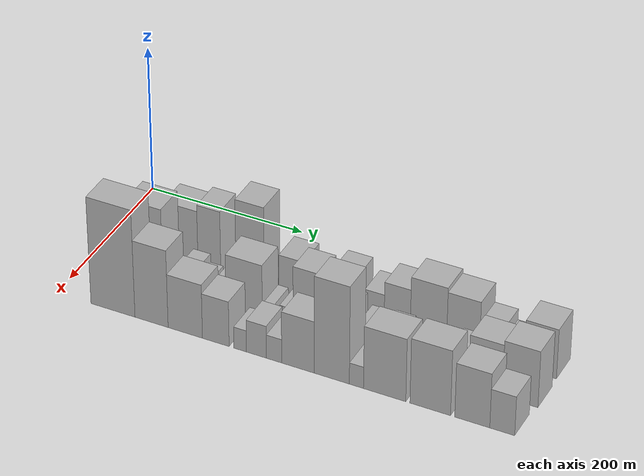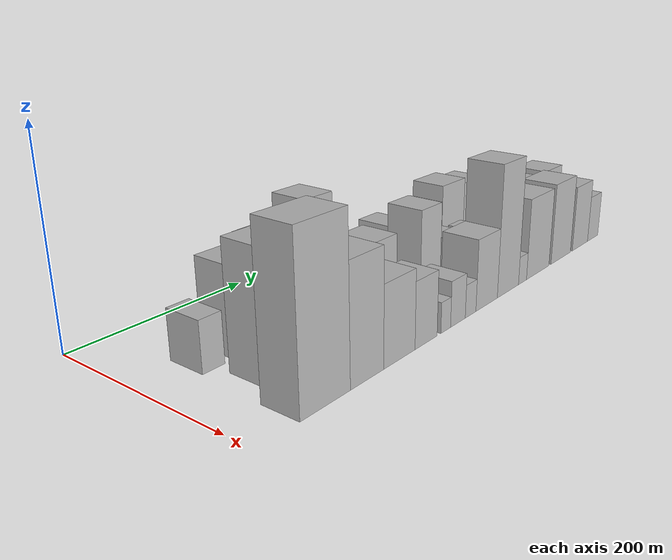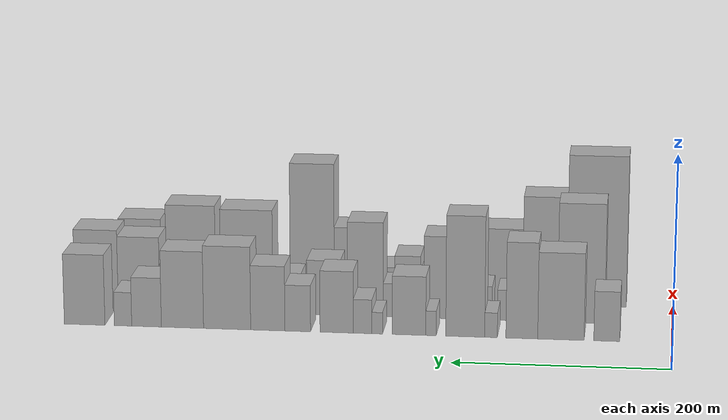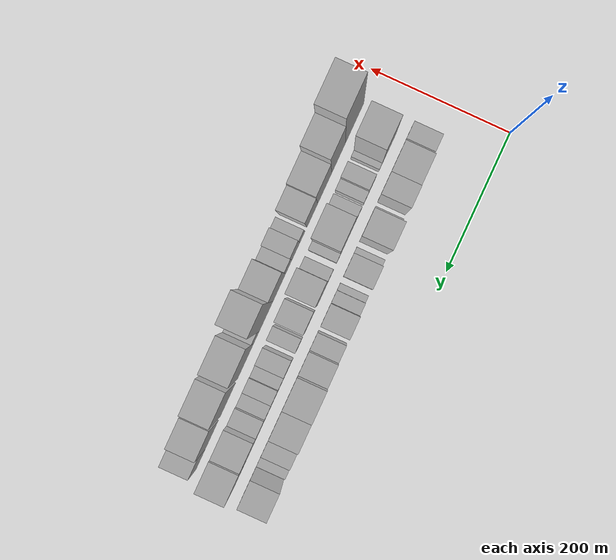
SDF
<sdf version="1.6">
 <world name="default">
  <model name="building_13">
   <static>1</static>
   <pose>100.0000 60.9110 0 0.000000 0.000000 0.000000</pose>
   <link name="link">
    <pose>0 0 24.00 0 0 0</pose>
    <collision name="collision"><geometry><box><size>40.0000 24.1148 48.0000</size></box></geometry></collision>
    <visual name="visual">
     <cast_shadows>0</cast_shadows>
     <geometry><box><size>40.0000 24.1148 48.0000</size></box></geometry>
     <material>
      <script>
       <uri>model://HANNAS_wall/materials/scripts</uri>
       <uri>model://HANNAS_wall/materials/textures</uri>
       <name>vrc/HANNAS_wall</name>
      </script>
     </material>
    </visual>
   </link>
  </model>
  <model name="building_14">
   <static>1</static>
   <pose>100.0000 103.5865 0 0.000000 0.000000 0.000000</pose>
   <link name="link">
    <pose>0 0 42.00 0 0 0</pose>
    <collision name="collision"><geometry><box><size>40.0000 43.2362 84.0000</size></box></geometry></collision>
    <visual name="visual">
     <cast_shadows>0</cast_shadows>
     <geometry><box><size>40.0000 43.2362 84.0000</size></box></geometry>
     <material>
      <script>
       <uri>model://HANNAS_wall/materials/scripts</uri>
       <uri>model://HANNAS_wall/materials/textures</uri>
       <name>vrc/HANNAS_wall</name>
      </script>
     </material>
    </visual>
   </link>
  </model>
  <model name="building_15">
   <static>1</static>
   <pose>100.0000 140.0767 0 0.000000 0.000000 0.000000</pose>
   <link name="link">
    <pose>0 0 46.50 0 0 0</pose>
    <collision name="collision"><geometry><box><size>40.0000 29.7441 93.0000</size></box></geometry></collision>
    <visual name="visual">
     <cast_shadows>0</cast_shadows>
     <geometry><box><size>40.0000 29.7441 93.0000</size></box></geometry>
     <material>
      <script>
       <uri>model://HANNAS_wall/materials/scripts</uri>
       <uri>model://HANNAS_wall/materials/textures</uri>
       <name>vrc/HANNAS_wall</name>
      </script>
     </material>
    </visual>
   </link>
  </model>
  <model name="building_16">
   <static>1</static>
   <pose>100.0000 168.8575 0 0.000000 0.000000 0.000000</pose>
   <link name="link">
    <pose>0 0 12.00 0 0 0</pose>
    <collision name="collision"><geometry><box><size>40.0000 11.8175 24.0000</size></box></geometry></collision>
    <visual name="visual">
     <cast_shadows>0</cast_shadows>
     <geometry><box><size>40.0000 11.8175 24.0000</size></box></geometry>
     <material>
      <script>
       <uri>model://HANNAS_wall/materials/scripts</uri>
       <uri>model://HANNAS_wall/materials/textures</uri>
       <name>vrc/HANNAS_wall</name>
      </script>
     </material>
    </visual>
   </link>
  </model>
  <model name="building_17">
   <static>1</static>
   <pose>100.0000 193.0246 0 0.000000 0.000000 0.000000</pose>
   <link name="link">
    <pose>0 0 58.50 0 0 0</pose>
    <collision name="collision"><geometry><box><size>40.0000 36.5165 117.0000</size></box></geometry></collision>
    <visual name="visual">
     <cast_shadows>0</cast_shadows>
     <geometry><box><size>40.0000 36.5165 117.0000</size></box></geometry>
     <material>
      <script>
       <uri>model://HANNAS_wall/materials/scripts</uri>
       <uri>model://HANNAS_wall/materials/textures</uri>
       <name>vrc/HANNAS_wall</name>
      </script>
     </material>
    </visual>
   </link>
  </model>
  <model name="building_18">
   <static>1</static>
   <pose>100.0000 225.1715 0 0.000000 0.000000 0.000000</pose>
   <link name="link">
    <pose>0 0 12.00 0 0 0</pose>
    <collision name="collision"><geometry><box><size>40.0000 9.7774 24.0000</size></box></geometry></collision>
    <visual name="visual">
     <cast_shadows>0</cast_shadows>
     <geometry><box><size>40.0000 9.7774 24.0000</size></box></geometry>
     <material>
      <script>
       <uri>model://HANNAS_wall/materials/scripts</uri>
       <uri>model://HANNAS_wall/materials/textures</uri>
       <name>vrc/HANNAS_wall</name>
      </script>
     </material>
    </visual>
   </link>
  </model>
  <model name="building_19">
   <static>1</static>
   <pose>100.0000 245.9627 0 0.000000 0.000000 0.000000</pose>
   <link name="link">
    <pose>0 0 28.50 0 0 0</pose>
    <collision name="collision"><geometry><box><size>40.0000 31.8050 57.0000</size></box></geometry></collision>
    <visual name="visual">
     <cast_shadows>0</cast_shadows>
     <geometry><box><size>40.0000 31.8050 57.0000</size></box></geometry>
     <material>
      <script>
       <uri>model://HANNAS_wall/materials/scripts</uri>
       <uri>model://HANNAS_wall/materials/textures</uri>
       <name>vrc/HANNAS_wall</name>
      </script>
     </material>
    </visual>
   </link>
  </model>
  <model name="building_20">
   <static>1</static>
   <pose>100.0000 275.8866 0 0.000000 0.000000 0.000000</pose>
   <link name="link">
    <pose>0 0 10.50 0 0 0</pose>
    <collision name="collision"><geometry><box><size>40.0000 10.0427 21.0000</size></box></geometry></collision>
    <visual name="visual">
     <cast_shadows>0</cast_shadows>
     <geometry><box><size>40.0000 10.0427 21.0000</size></box></geometry>
     <material>
      <script>
       <uri>model://HANNAS_wall/materials/scripts</uri>
       <uri>model://HANNAS_wall/materials/textures</uri>
       <name>vrc/HANNAS_wall</name>
      </script>
     </material>
    </visual>
   </link>
  </model>
  <model name="building_21">
   <static>1</static>
   <pose>100.0000 289.7496 0 0.000000 0.000000 0.000000</pose>
   <link name="link">
    <pose>0 0 16.50 0 0 0</pose>
    <collision name="collision"><geometry><box><size>40.0000 17.6834 33.0000</size></box></geometry></collision>
    <visual name="visual">
     <cast_shadows>0</cast_shadows>
     <geometry><box><size>40.0000 17.6834 33.0000</size></box></geometry>
     <material>
      <script>
       <uri>model://HANNAS_wall/materials/scripts</uri>
       <uri>model://HANNAS_wall/materials/textures</uri>
       <name>vrc/HANNAS_wall</name>
      </script>
     </material>
    </visual>
   </link>
  </model>
  <model name="building_22">
   <static>1</static>
   <pose>100.0000 314.2747 0 0.000000 0.000000 0.000000</pose>
   <link name="link">
    <pose>0 0 30.00 0 0 0</pose>
    <collision name="collision"><geometry><box><size>40.0000 31.3669 60.0000</size></box></geometry></collision>
    <visual name="visual">
     <cast_shadows>0</cast_shadows>
     <geometry><box><size>40.0000 31.3669 60.0000</size></box></geometry>
     <material>
      <script>
       <uri>model://HANNAS_wall/materials/scripts</uri>
       <uri>model://HANNAS_wall/materials/textures</uri>
       <name>vrc/HANNAS_wall</name>
      </script>
     </material>
    </visual>
   </link>
  </model>
  <model name="building_23">
   <static>1</static>
   <pose>100.0000 351.1268 0 0.000000 0.000000 0.000000</pose>
   <link name="link">
    <pose>0 0 22.50 0 0 0</pose>
    <collision name="collision"><geometry><box><size>40.0000 24.3372 45.0000</size></box></geometry></collision>
    <visual name="visual">
     <cast_shadows>0</cast_shadows>
     <geometry><box><size>40.0000 24.3372 45.0000</size></box></geometry>
     <material>
      <script>
       <uri>model://HANNAS_wall/materials/scripts</uri>
       <uri>model://HANNAS_wall/materials/textures</uri>
       <name>vrc/HANNAS_wall</name>
      </script>
     </material>
    </visual>
   </link>
  </model>
  <model name="building_24">
   <static>1</static>
   <pose>100.0000 379.5723 0 0.000000 0.000000 0.000000</pose>
   <link name="link">
    <pose>0 0 31.50 0 0 0</pose>
    <collision name="collision"><geometry><box><size>40.0000 32.5538 63.0000</size></box></geometry></collision>
    <visual name="visual">
     <cast_shadows>0</cast_shadows>
     <geometry><box><size>40.0000 32.5538 63.0000</size></box></geometry>
     <material>
      <script>
       <uri>model://HANNAS_wall/materials/scripts</uri>
       <uri>model://HANNAS_wall/materials/textures</uri>
       <name>vrc/HANNAS_wall</name>
      </script>
     </material>
    </visual>
   </link>
  </model>
  <model name="building_25">
   <static>1</static>
   <pose>100.0000 418.3268 0 0.000000 0.000000 0.000000</pose>
   <link name="link">
    <pose>0 0 40.50 0 0 0</pose>
    <collision name="collision"><geometry><box><size>40.0000 44.9550 81.0000</size></box></geometry></collision>
    <visual name="visual">
     <cast_shadows>0</cast_shadows>
     <geometry><box><size>40.0000 44.9550 81.0000</size></box></geometry>
     <material>
      <script>
       <uri>model://HANNAS_wall/materials/scripts</uri>
       <uri>model://HANNAS_wall/materials/textures</uri>
       <name>vrc/HANNAS_wall</name>
      </script>
     </material>
    </visual>
   </link>
  </model>
  <model name="building_26">
   <static>1</static>
   <pose>100.0000 460.9864 0 0.000000 0.000000 0.000000</pose>
   <link name="link">
    <pose>0 0 37.50 0 0 0</pose>
    <collision name="collision"><geometry><box><size>40.0000 40.3642 75.0000</size></box></geometry></collision>
    <visual name="visual">
     <cast_shadows>0</cast_shadows>
     <geometry><box><size>40.0000 40.3642 75.0000</size></box></geometry>
     <material>
      <script>
       <uri>model://HANNAS_wall/materials/scripts</uri>
       <uri>model://HANNAS_wall/materials/textures</uri>
       <name>vrc/HANNAS_wall</name>
      </script>
     </material>
    </visual>
   </link>
  </model>
  <model name="building_27">
   <static>1</static>
   <pose>100.0000 495.3992 0 0.000000 0.000000 0.000000</pose>
   <link name="link">
    <pose>0 0 24.00 0 0 0</pose>
    <collision name="collision"><geometry><box><size>40.0000 28.4614 48.0000</size></box></geometry></collision>
    <visual name="visual">
     <cast_shadows>0</cast_shadows>
     <geometry><box><size>40.0000 28.4614 48.0000</size></box></geometry>
     <material>
      <script>
       <uri>model://HANNAS_wall/materials/scripts</uri>
       <uri>model://HANNAS_wall/materials/textures</uri>
       <name>vrc/HANNAS_wall</name>
      </script>
     </material>
    </visual>
   </link>
  </model>
  <model name="building_28">
   <static>1</static>
   <pose>100.0000 517.9924 0 0.000000 0.000000 0.000000</pose>
   <link name="link">
    <pose>0 0 16.50 0 0 0</pose>
    <collision name="collision"><geometry><box><size>40.0000 16.7249 33.0000</size></box></geometry></collision>
    <visual name="visual">
     <cast_shadows>0</cast_shadows>
     <geometry><box><size>40.0000 16.7249 33.0000</size></box></geometry>
     <material>
      <script>
       <uri>model://HANNAS_wall/materials/scripts</uri>
       <uri>model://HANNAS_wall/materials/textures</uri>
       <name>vrc/HANNAS_wall</name>
      </script>
     </material>
    </visual>
   </link>
  </model>
  <model name="building_29">
   <static>1</static>
   <pose>100.0000 554.8969 0 0.000000 0.000000 0.000000</pose>
   <link name="link">
    <pose>0 0 34.50 0 0 0</pose>
    <collision name="collision"><geometry><box><size>40.0000 39.0842 69.0000</size></box></geometry></collision>
    <visual name="visual">
     <cast_shadows>0</cast_shadows>
     <geometry><box><size>40.0000 39.0842 69.0000</size></box></geometry>
     <material>
      <script>
       <uri>model://HANNAS_wall/materials/scripts</uri>
       <uri>model://HANNAS_wall/materials/textures</uri>
       <name>vrc/HANNAS_wall</name>
      </script>
     </material>
    </visual>
   </link>
  </model>
  <model name="building_50">
   <static>1</static>
   <pose>155.0000 86.7038 0 0.000000 0.000000 0.000000</pose>
   <link name="link">
    <pose>0 0 58.50 0 0 0</pose>
    <collision name="collision"><geometry><box><size>40.0000 44.8231 117.0000</size></box></geometry></collision>
    <visual name="visual">
     <cast_shadows>0</cast_shadows>
     <geometry><box><size>40.0000 44.8231 117.0000</size></box></geometry>
     <material>
      <script>
       <uri>model://HANNAS_wall/materials/scripts</uri>
       <uri>model://HANNAS_wall/materials/textures</uri>
       <name>vrc/HANNAS_wall</name>
      </script>
     </material>
    </visual>
   </link>
  </model>
  <model name="building_51">
   <static>1</static>
   <pose>155.0000 113.6470 0 0.000000 0.000000 0.000000</pose>
   <link name="link">
    <pose>0 0 10.50 0 0 0</pose>
    <collision name="collision"><geometry><box><size>40.0000 9.0633 21.0000</size></box></geometry></collision>
    <visual name="visual">
     <cast_shadows>0</cast_shadows>
     <geometry><box><size>40.0000 9.0633 21.0000</size></box></geometry>
     <material>
      <script>
       <uri>model://HANNAS_wall/materials/scripts</uri>
       <uri>model://HANNAS_wall/materials/textures</uri>
       <name>vrc/HANNAS_wall</name>
      </script>
     </material>
    </visual>
   </link>
  </model>
  <model name="building_52">
   <static>1</static>
   <pose>155.0000 139.1950 0 0.000000 0.000000 0.000000</pose>
   <link name="link">
    <pose>0 0 21.00 0 0 0</pose>
    <collision name="collision"><geometry><box><size>40.0000 22.0328 42.0000</size></box></geometry></collision>
    <visual name="visual">
     <cast_shadows>0</cast_shadows>
     <geometry><box><size>40.0000 22.0328 42.0000</size></box></geometry>
     <material>
      <script>
       <uri>model://HANNAS_wall/materials/scripts</uri>
       <uri>model://HANNAS_wall/materials/textures</uri>
       <name>vrc/HANNAS_wall</name>
      </script>
     </material>
    </visual>
   </link>
  </model>
  <model name="building_53">
   <static>1</static>
   <pose>155.0000 158.3336 0 0.000000 0.000000 0.000000</pose>
   <link name="link">
    <pose>0 0 15.00 0 0 0</pose>
    <collision name="collision"><geometry><box><size>40.0000 16.2444 30.0000</size></box></geometry></collision>
    <visual name="visual">
     <cast_shadows>0</cast_shadows>
     <geometry><box><size>40.0000 16.2444 30.0000</size></box></geometry>
     <material>
      <script>
       <uri>model://HANNAS_wall/materials/scripts</uri>
       <uri>model://HANNAS_wall/materials/textures</uri>
       <name>vrc/HANNAS_wall</name>
      </script>
     </material>
    </visual>
   </link>
  </model>
  <model name="building_54">
   <static>1</static>
   <pose>155.0000 180.9359 0 0.000000 0.000000 0.000000</pose>
   <link name="link">
    <pose>0 0 16.50 0 0 0</pose>
    <collision name="collision"><geometry><box><size>40.0000 18.9603 33.0000</size></box></geometry></collision>
    <visual name="visual">
     <cast_shadows>0</cast_shadows>
     <geometry><box><size>40.0000 18.9603 33.0000</size></box></geometry>
     <material>
      <script>
       <uri>model://HANNAS_wall/materials/scripts</uri>
       <uri>model://HANNAS_wall/materials/textures</uri>
       <name>vrc/HANNAS_wall</name>
      </script>
     </material>
    </visual>
   </link>
  </model>
  <model name="building_55">
   <static>1</static>
   <pose>155.0000 213.6391 0 0.000000 0.000000 0.000000</pose>
   <link name="link">
    <pose>0 0 40.50 0 0 0</pose>
    <collision name="collision"><geometry><box><size>40.0000 46.4460 81.0000</size></box></geometry></collision>
    <visual name="visual">
     <cast_shadows>0</cast_shadows>
     <geometry><box><size>40.0000 46.4460 81.0000</size></box></geometry>
     <material>
      <script>
       <uri>model://HANNAS_wall/materials/scripts</uri>
       <uri>model://HANNAS_wall/materials/textures</uri>
       <name>vrc/HANNAS_wall</name>
      </script>
     </material>
    </visual>
   </link>
  </model>
  <model name="building_56">
   <static>1</static>
   <pose>155.0000 243.3814 0 0.000000 0.000000 0.000000</pose>
   <link name="link">
    <pose>0 0 13.50 0 0 0</pose>
    <collision name="collision"><geometry><box><size>40.0000 13.0386 27.0000</size></box></geometry></collision>
    <visual name="visual">
     <cast_shadows>0</cast_shadows>
     <geometry><box><size>40.0000 13.0386 27.0000</size></box></geometry>
     <material>
      <script>
       <uri>model://HANNAS_wall/materials/scripts</uri>
       <uri>model://HANNAS_wall/materials/textures</uri>
       <name>vrc/HANNAS_wall</name>
      </script>
     </material>
    </visual>
   </link>
  </model>
  <model name="building_57">
   <static>1</static>
   <pose>155.0000 267.3557 0 0.000000 0.000000 0.000000</pose>
   <link name="link">
    <pose>0 0 16.50 0 0 0</pose>
    <collision name="collision"><geometry><box><size>40.0000 16.9100 33.0000</size></box></geometry></collision>
    <visual name="visual">
     <cast_shadows>0</cast_shadows>
     <geometry><box><size>40.0000 16.9100 33.0000</size></box></geometry>
     <material>
      <script>
       <uri>model://HANNAS_wall/materials/scripts</uri>
       <uri>model://HANNAS_wall/materials/textures</uri>
       <name>vrc/HANNAS_wall</name>
      </script>
     </material>
    </visual>
   </link>
  </model>
  <model name="building_58">
   <static>1</static>
   <pose>155.0000 293.0008 0 0.000000 0.000000 0.000000</pose>
   <link name="link">
    <pose>0 0 46.50 0 0 0</pose>
    <collision name="collision"><geometry><box><size>40.0000 34.3802 93.0000</size></box></geometry></collision>
    <visual name="visual">
     <cast_shadows>0</cast_shadows>
     <geometry><box><size>40.0000 34.3802 93.0000</size></box></geometry>
     <material>
      <script>
       <uri>model://HANNAS_wall/materials/scripts</uri>
       <uri>model://HANNAS_wall/materials/textures</uri>
       <name>vrc/HANNAS_wall</name>
      </script>
     </material>
    </visual>
   </link>
  </model>
  <model name="building_59">
   <static>1</static>
   <pose>155.0000 333.3561 0 0.000000 0.000000 0.000000</pose>
   <link name="link">
    <pose>0 0 27.00 0 0 0</pose>
    <collision name="collision"><geometry><box><size>40.0000 32.3304 54.0000</size></box></geometry></collision>
    <visual name="visual">
     <cast_shadows>0</cast_shadows>
     <geometry><box><size>40.0000 32.3304 54.0000</size></box></geometry>
     <material>
      <script>
       <uri>model://HANNAS_wall/materials/scripts</uri>
       <uri>model://HANNAS_wall/materials/textures</uri>
       <name>vrc/HANNAS_wall</name>
      </script>
     </material>
    </visual>
   </link>
  </model>
  <model name="building_60">
   <static>1</static>
   <pose>155.0000 365.4560 0 0.000000 0.000000 0.000000</pose>
   <link name="link">
    <pose>0 0 19.50 0 0 0</pose>
    <collision name="collision"><geometry><box><size>40.0000 19.8695 39.0000</size></box></geometry></collision>
    <visual name="visual">
     <cast_shadows>0</cast_shadows>
     <geometry><box><size>40.0000 19.8695 39.0000</size></box></geometry>
     <material>
      <script>
       <uri>model://HANNAS_wall/materials/scripts</uri>
       <uri>model://HANNAS_wall/materials/textures</uri>
       <name>vrc/HANNAS_wall</name>
      </script>
     </material>
    </visual>
   </link>
  </model>
  <model name="building_61">
   <static>1</static>
   <pose>155.0000 397.5208 0 0.000000 0.000000 0.000000</pose>
   <link name="link">
    <pose>0 0 21.00 0 0 0</pose>
    <collision name="collision"><geometry><box><size>40.0000 24.2600 42.0000</size></box></geometry></collision>
    <visual name="visual">
     <cast_shadows>0</cast_shadows>
     <geometry><box><size>40.0000 24.2600 42.0000</size></box></geometry>
     <material>
      <script>
       <uri>model://HANNAS_wall/materials/scripts</uri>
       <uri>model://HANNAS_wall/materials/textures</uri>
       <name>vrc/HANNAS_wall</name>
      </script>
     </material>
    </visual>
   </link>
  </model>
  <model name="building_62">
   <static>1</static>
   <pose>155.0000 418.5373 0 0.000000 0.000000 0.000000</pose>
   <link name="link">
    <pose>0 0 16.50 0 0 0</pose>
    <collision name="collision"><geometry><box><size>40.0000 17.7729 33.0000</size></box></geometry></collision>
    <visual name="visual">
     <cast_shadows>0</cast_shadows>
     <geometry><box><size>40.0000 17.7729 33.0000</size></box></geometry>
     <material>
      <script>
       <uri>model://HANNAS_wall/materials/scripts</uri>
       <uri>model://HANNAS_wall/materials/textures</uri>
       <name>vrc/HANNAS_wall</name>
      </script>
     </material>
    </visual>
   </link>
  </model>
  <model name="building_63">
   <static>1</static>
   <pose>155.0000 437.8290 0 0.000000 0.000000 0.000000</pose>
   <link name="link">
    <pose>0 0 19.50 0 0 0</pose>
    <collision name="collision"><geometry><box><size>40.0000 20.8105 39.0000</size></box></geometry></collision>
    <visual name="visual">
     <cast_shadows>0</cast_shadows>
     <geometry><box><size>40.0000 20.8105 39.0000</size></box></geometry>
     <material>
      <script>
       <uri>model://HANNAS_wall/materials/scripts</uri>
       <uri>model://HANNAS_wall/materials/textures</uri>
       <name>vrc/HANNAS_wall</name>
      </script>
     </material>
    </visual>
   </link>
  </model>
  <model name="building_64">
   <static>1</static>
   <pose>155.0000 458.1933 0 0.000000 0.000000 0.000000</pose>
   <link name="link">
    <pose>0 0 18.00 0 0 0</pose>
    <collision name="collision"><geometry><box><size>40.0000 19.9182 36.0000</size></box></geometry></collision>
    <visual name="visual">
     <cast_shadows>0</cast_shadows>
     <geometry><box><size>40.0000 19.9182 36.0000</size></box></geometry>
     <material>
      <script>
       <uri>model://HANNAS_wall/materials/scripts</uri>
       <uri>model://HANNAS_wall/materials/textures</uri>
       <name>vrc/HANNAS_wall</name>
      </script>
     </material>
    </visual>
   </link>
  </model>
  <model name="building_65">
   <static>1</static>
   <pose>155.0000 480.2966 0 0.000000 0.000000 0.000000</pose>
   <link name="link">
    <pose>0 0 22.50 0 0 0</pose>
    <collision name="collision"><geometry><box><size>40.0000 24.2884 45.0000</size></box></geometry></collision>
    <visual name="visual">
     <cast_shadows>0</cast_shadows>
     <geometry><box><size>40.0000 24.2884 45.0000</size></box></geometry>
     <material>
      <script>
       <uri>model://HANNAS_wall/materials/scripts</uri>
       <uri>model://HANNAS_wall/materials/textures</uri>
       <name>vrc/HANNAS_wall</name>
      </script>
     </material>
    </visual>
   </link>
  </model>
  <model name="building_66">
   <static>1</static>
   <pose>155.0000 512.7795 0 0.000000 0.000000 0.000000</pose>
   <link name="link">
    <pose>0 0 36.00 0 0 0</pose>
    <collision name="collision"><geometry><box><size>40.0000 40.6774 72.0000</size></box></geometry></collision>
    <visual name="visual">
     <cast_shadows>0</cast_shadows>
     <geometry><box><size>40.0000 40.6774 72.0000</size></box></geometry>
     <material>
      <script>
       <uri>model://HANNAS_wall/materials/scripts</uri>
       <uri>model://HANNAS_wall/materials/textures</uri>
       <name>vrc/HANNAS_wall</name>
      </script>
     </material>
    </visual>
   </link>
  </model>
  <model name="building_67">
   <static>1</static>
   <pose>155.0000 554.3783 0 0.000000 0.000000 0.000000</pose>
   <link name="link">
    <pose>0 0 39.00 0 0 0</pose>
    <collision name="collision"><geometry><box><size>40.0000 42.5201 78.0000</size></box></geometry></collision>
    <visual name="visual">
     <cast_shadows>0</cast_shadows>
     <geometry><box><size>40.0000 42.5201 78.0000</size></box></geometry>
     <material>
      <script>
       <uri>model://HANNAS_wall/materials/scripts</uri>
       <uri>model://HANNAS_wall/materials/textures</uri>
       <name>vrc/HANNAS_wall</name>
      </script>
     </material>
    </visual>
   </link>
  </model>
  <model name="building_85">
   <static>1</static>
   <pose>210.0000 73.7719 0 0.000000 0.000000 0.000000</pose>
   <link name="link">
    <pose>0 0 75.00 0 0 0</pose>
    <collision name="collision"><geometry><box><size>40.0000 57.3532 150.0000</size></box></geometry></collision>
    <visual name="visual">
     <cast_shadows>0</cast_shadows>
     <geometry><box><size>40.0000 57.3532 150.0000</size></box></geometry>
     <material>
      <script>
       <uri>model://HANNAS_wall/materials/scripts</uri>
       <uri>model://HANNAS_wall/materials/textures</uri>
       <name>vrc/HANNAS_wall</name>
      </script>
     </material>
    </visual>
   </link>
  </model>
  <model name="building_86">
   <static>1</static>
   <pose>210.0000 123.8322 0 0.000000 0.000000 0.000000</pose>
   <link name="link">
    <pose>0 0 54.00 0 0 0</pose>
    <collision name="collision"><geometry><box><size>40.0000 42.7673 108.0000</size></box></geometry></collision>
    <visual name="visual">
     <cast_shadows>0</cast_shadows>
     <geometry><box><size>40.0000 42.7673 108.0000</size></box></geometry>
     <material>
      <script>
       <uri>model://HANNAS_wall/materials/scripts</uri>
       <uri>model://HANNAS_wall/materials/textures</uri>
       <name>vrc/HANNAS_wall</name>
      </script>
     </material>
    </visual>
   </link>
  </model>
  <model name="building_87">
   <static>1</static>
   <pose>210.0000 167.1877 0 0.000000 0.000000 0.000000</pose>
   <link name="link">
    <pose>0 0 37.50 0 0 0</pose>
    <collision name="collision"><geometry><box><size>40.0000 43.9439 75.0000</size></box></geometry></collision>
    <visual name="visual">
     <cast_shadows>0</cast_shadows>
     <geometry><box><size>40.0000 43.9439 75.0000</size></box></geometry>
     <material>
      <script>
       <uri>model://HANNAS_wall/materials/scripts</uri>
       <uri>model://HANNAS_wall/materials/textures</uri>
       <name>vrc/HANNAS_wall</name>
      </script>
     </material>
    </visual>
   </link>
  </model>
  <model name="building_88">
   <static>1</static>
   <pose>210.0000 206.1076 0 0.000000 0.000000 0.000000</pose>
   <link name="link">
    <pose>0 0 31.50 0 0 0</pose>
    <collision name="collision"><geometry><box><size>40.0000 33.8959 63.0000</size></box></geometry></collision>
    <visual name="visual">
     <cast_shadows>0</cast_shadows>
     <geometry><box><size>40.0000 33.8959 63.0000</size></box></geometry>
     <material>
      <script>
       <uri>model://HANNAS_wall/materials/scripts</uri>
       <uri>model://HANNAS_wall/materials/textures</uri>
       <name>vrc/HANNAS_wall</name>
      </script>
     </material>
    </visual>
   </link>
  </model>
  <model name="building_89">
   <static>1</static>
   <pose>210.0000 236.9718 0 0.000000 0.000000 0.000000</pose>
   <link name="link">
    <pose>0 0 15.00 0 0 0</pose>
    <collision name="collision"><geometry><box><size>40.0000 15.8325 30.0000</size></box></geometry></collision>
    <visual name="visual">
     <cast_shadows>0</cast_shadows>
     <geometry><box><size>40.0000 15.8325 30.0000</size></box></geometry>
     <material>
      <script>
       <uri>model://HANNAS_wall/materials/scripts</uri>
       <uri>model://HANNAS_wall/materials/textures</uri>
       <name>vrc/HANNAS_wall</name>
      </script>
     </material>
    </visual>
   </link>
  </model>
  <model name="building_90">
   <static>1</static>
   <pose>210.0000 257.4618 0 0.000000 0.000000 0.000000</pose>
   <link name="link">
    <pose>0 0 22.50 0 0 0</pose>
    <collision name="collision"><geometry><box><size>40.0000 25.1475 45.0000</size></box></geometry></collision>
    <visual name="visual">
     <cast_shadows>0</cast_shadows>
     <geometry><box><size>40.0000 25.1475 45.0000</size></box></geometry>
     <material>
      <script>
       <uri>model://HANNAS_wall/materials/scripts</uri>
       <uri>model://HANNAS_wall/materials/textures</uri>
       <name>vrc/HANNAS_wall</name>
      </script>
     </material>
    </visual>
   </link>
  </model>
  <model name="building_91">
   <static>1</static>
   <pose>210.0000 279.5401 0 0.000000 0.000000 0.000000</pose>
   <link name="link">
    <pose>0 0 16.50 0 0 0</pose>
    <collision name="collision"><geometry><box><size>40.0000 19.0089 33.0000</size></box></geometry></collision>
    <visual name="visual">
     <cast_shadows>0</cast_shadows>
     <geometry><box><size>40.0000 19.0089 33.0000</size></box></geometry>
     <material>
      <script>
       <uri>model://HANNAS_wall/materials/scripts</uri>
       <uri>model://HANNAS_wall/materials/textures</uri>
       <name>vrc/HANNAS_wall</name>
      </script>
     </material>
    </visual>
   </link>
  </model>
  <model name="building_92">
   <static>1</static>
   <pose>210.0000 309.2860 0 0.000000 0.000000 0.000000</pose>
   <link name="link">
    <pose>0 0 36.00 0 0 0</pose>
    <collision name="collision"><geometry><box><size>40.0000 40.4829 72.0000</size></box></geometry></collision>
    <visual name="visual">
     <cast_shadows>0</cast_shadows>
     <geometry><box><size>40.0000 40.4829 72.0000</size></box></geometry>
     <material>
      <script>
       <uri>model://HANNAS_wall/materials/scripts</uri>
       <uri>model://HANNAS_wall/materials/textures</uri>
       <name>vrc/HANNAS_wall</name>
      </script>
     </material>
    </visual>
   </link>
  </model>
  <model name="building_93">
   <static>1</static>
   <pose>210.0000 351.1900 0 0.000000 0.000000 0.000000</pose>
   <link name="link">
    <pose>0 0 67.50 0 0 0</pose>
    <collision name="collision"><geometry><box><size>40.0000 43.3250 135.0000</size></box></geometry></collision>
    <visual name="visual">
     <cast_shadows>0</cast_shadows>
     <geometry><box><size>40.0000 43.3250 135.0000</size></box></geometry>
     <material>
      <script>
       <uri>model://HANNAS_wall/materials/scripts</uri>
       <uri>model://HANNAS_wall/materials/textures</uri>
       <name>vrc/HANNAS_wall</name>
      </script>
     </material>
    </visual>
   </link>
  </model>
  <model name="building_94">
   <static>1</static>
   <pose>210.0000 381.5147 0 0.000000 0.000000 0.000000</pose>
   <link name="link">
    <pose>0 0 15.00 0 0 0</pose>
    <collision name="collision"><geometry><box><size>40.0000 17.3245 30.0000</size></box></geometry></collision>
    <visual name="visual">
     <cast_shadows>0</cast_shadows>
     <geometry><box><size>40.0000 17.3245 30.0000</size></box></geometry>
     <material>
      <script>
       <uri>model://HANNAS_wall/materials/scripts</uri>
       <uri>model://HANNAS_wall/materials/textures</uri>
       <name>vrc/HANNAS_wall</name>
      </script>
     </material>
    </visual>
   </link>
  </model>
  <model name="building_95">
   <static>1</static>
   <pose>210.0000 415.9490 0 0.000000 0.000000 0.000000</pose>
   <link name="link">
    <pose>0 0 43.50 0 0 0</pose>
    <collision name="collision"><geometry><box><size>40.0000 51.5440 87.0000</size></box></geometry></collision>
    <visual name="visual">
     <cast_shadows>0</cast_shadows>
     <geometry><box><size>40.0000 51.5440 87.0000</size></box></geometry>
     <material>
      <script>
       <uri>model://HANNAS_wall/materials/scripts</uri>
       <uri>model://HANNAS_wall/materials/textures</uri>
       <name>vrc/HANNAS_wall</name>
      </script>
     </material>
    </visual>
   </link>
  </model>
  <model name="building_96">
   <static>1</static>
   <pose>210.0000 471.1602 0 0.000000 0.000000 0.000000</pose>
   <link name="link">
    <pose>0 0 45.00 0 0 0</pose>
    <collision name="collision"><geometry><box><size>40.0000 48.8784 90.0000</size></box></geometry></collision>
    <visual name="visual">
     <cast_shadows>0</cast_shadows>
     <geometry><box><size>40.0000 48.8784 90.0000</size></box></geometry>
     <material>
      <script>
       <uri>model://HANNAS_wall/materials/scripts</uri>
       <uri>model://HANNAS_wall/materials/textures</uri>
       <name>vrc/HANNAS_wall</name>
      </script>
     </material>
    </visual>
   </link>
  </model>
  <model name="building_97">
   <static>1</static>
   <pose>210.0000 521.4623 0 0.000000 0.000000 0.000000</pose>
   <link name="link">
    <pose>0 0 37.50 0 0 0</pose>
    <collision name="collision"><geometry><box><size>40.0000 41.7258 75.0000</size></box></geometry></collision>
    <visual name="visual">
     <cast_shadows>0</cast_shadows>
     <geometry><box><size>40.0000 41.7258 75.0000</size></box></geometry>
     <material>
      <script>
       <uri>model://HANNAS_wall/materials/scripts</uri>
       <uri>model://HANNAS_wall/materials/textures</uri>
       <name>vrc/HANNAS_wall</name>
      </script>
     </material>
    </visual>
   </link>
  </model>
  <model name="building_98">
   <static>1</static>
   <pose>210.0000 557.0612 0 0.000000 0.000000 0.000000</pose>
   <link name="link">
    <pose>0 0 27.00 0 0 0</pose>
    <collision name="collision"><geometry><box><size>40.0000 29.4720 54.0000</size></box></geometry></collision>
    <visual name="visual">
     <cast_shadows>0</cast_shadows>
     <geometry><box><size>40.0000 29.4720 54.0000</size></box></geometry>
     <material>
      <script>
       <uri>model://HANNAS_wall/materials/scripts</uri>
       <uri>model://HANNAS_wall/materials/textures</uri>
       <name>vrc/HANNAS_wall</name>
      </script>
     </material>
    </visual>
   </link>
  </model>
 </world>
</sdf>
